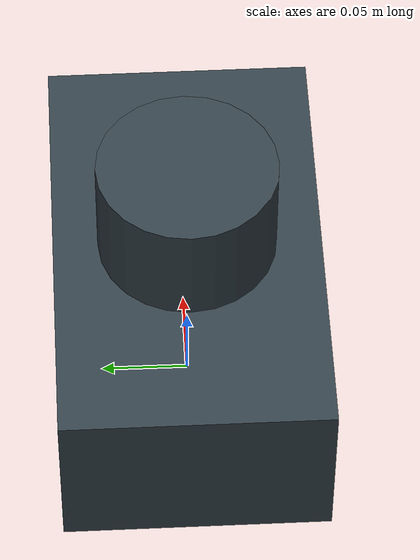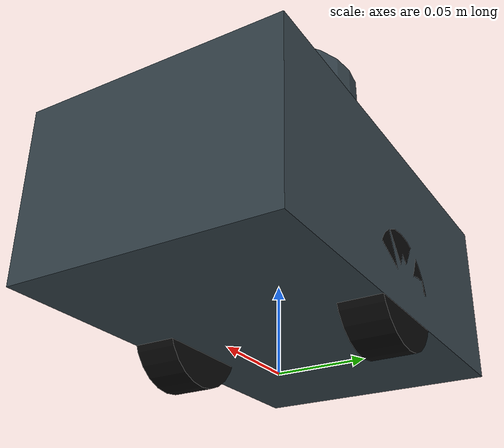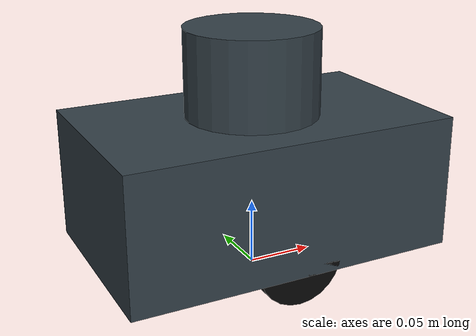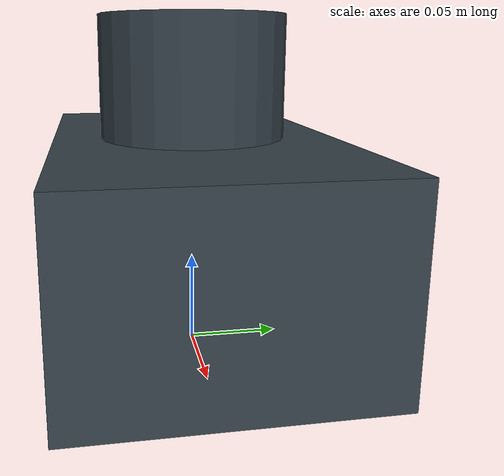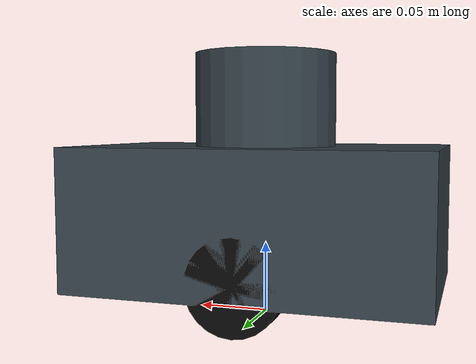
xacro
<?xml version="1.0"?>
<robot xmlns:xacro="http://www.ros.org/wiki/xacro" name="mycar">
  <xacro:arg name="serial_port" default="/dev/ttyUSB0"/>
  <xacro:arg name="baud_rate" default="115200"/>
  <xacro:arg name="max_rpm" default="100.0"/>
  <xacro:arg name="max_pwm" default="3599"/>

  <xacro:property name="wheel_radius" value="0.0325"/>
  <xacro:property name="wheel_width" value="0.025"/>
  <xacro:property name="wheel_separation" value="0.125"/>

  <material name="body_gray"><color rgba="0.2 0.25 0.28 1"/></material>
  <material name="wheel_black"><color rgba="0.03 0.03 0.03 1"/></material>

  <link name="base_link">
    <visual>
      <origin xyz="0 0 0.07"/>
      <geometry><box size="0.25 0.15 0.10"/></geometry>
      <material name="body_gray"/>
    </visual>
    <collision>
      <origin xyz="0 0 0.07"/>
      <geometry><box size="0.25 0.15 0.10"/></geometry>
    </collision>
    <inertial>
      <origin xyz="0 0 0.07"/>
      <mass value="2.0"/>
      <inertia ixx="0.0054" ixy="0" ixz="0" iyy="0.0121" iyz="0" izz="0.0133"/>
    </inertial>
  </link>

  <xacro:macro name="wheel" params="side y sign">
    <link name="${side}_wheel_link">
      <visual>
        <origin rpy="1.570796 0 0"/>
        <geometry><cylinder radius="${wheel_radius}" length="${wheel_width}"/></geometry>
        <material name="wheel_black"/>
      </visual>
      <collision>
        <origin rpy="1.570796 0 0"/>
        <geometry><cylinder radius="${wheel_radius}" length="${wheel_width}"/></geometry>
      </collision>
      <inertial>
        <mass value="0.10"/>
        <inertia ixx="0.00003" ixy="0" ixz="0" iyy="0.00005" iyz="0" izz="0.00003"/>
      </inertial>
    </link>
    <joint name="${side}_wheel_joint" type="continuous">
      <parent link="base_link"/>
      <child link="${side}_wheel_link"/>
      <origin xyz="0 ${y} ${wheel_radius}"/>
      <axis xyz="0 ${sign} 0"/>
    </joint>
  </xacro:macro>

  <xacro:wheel side="left" y="${wheel_separation / 2.0}" sign="1"/>
  <xacro:wheel side="right" y="${-wheel_separation / 2.0}" sign="1"/>

  <link name="laser">
    <visual>
      <geometry><cylinder radius="0.05" length="0.07"/></geometry>
      <material name="body_gray"/>
    </visual>
  </link>
  <joint name="laser_joint" type="fixed">
    <parent link="base_link"/>
    <child link="laser"/>
    <origin xyz="0 0 0.15"/>
  </joint>

  <!-- IMU的安装位置和姿态需按实车修改，坐标轴：x前、y左、z上。 -->
  <link name="imu_link"/>
  <joint name="imu_joint" type="fixed">
    <parent link="base_link"/>
    <child link="imu_link"/>
    <origin xyz="0 0 0.10" rpy="0 0 0"/>
  </joint>

  <ros2_control name="MyCarSystem" type="system">
    <hardware>
      <plugin>mycar_base/MyCarSystem</plugin>
      <param name="serial_port">$(arg serial_port)</param>
      <param name="baud_rate">$(arg baud_rate)</param>
      <!-- max_rpm是满PWM时轮速的初始标定值，不是闭环转速反馈。 -->
      <param name="max_rpm">$(arg max_rpm)</param>
      <param name="max_pwm">$(arg max_pwm)</param>
      <param name="left_pwm_scale">1.0</param>
      <param name="right_pwm_scale">1.0</param>
      <param name="feedback_timeout_ms">500</param>
    </hardware>
    <joint name="left_wheel_joint">
      <command_interface name="velocity"/>
      <state_interface name="position"/>
      <state_interface name="velocity"/>
    </joint>
    <joint name="right_wheel_joint">
      <command_interface name="velocity"/>
      <state_interface name="position"/>
      <state_interface name="velocity"/>
    </joint>
  </ros2_control>
</robot>
